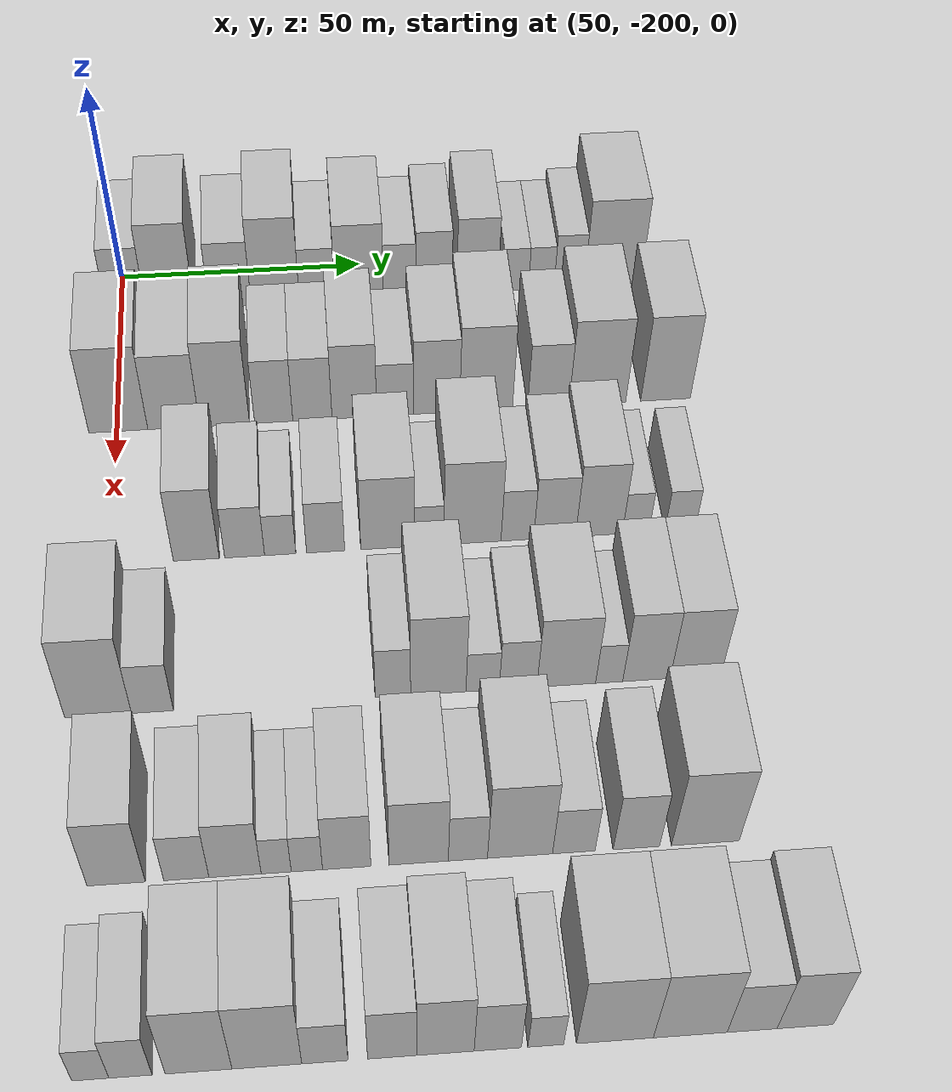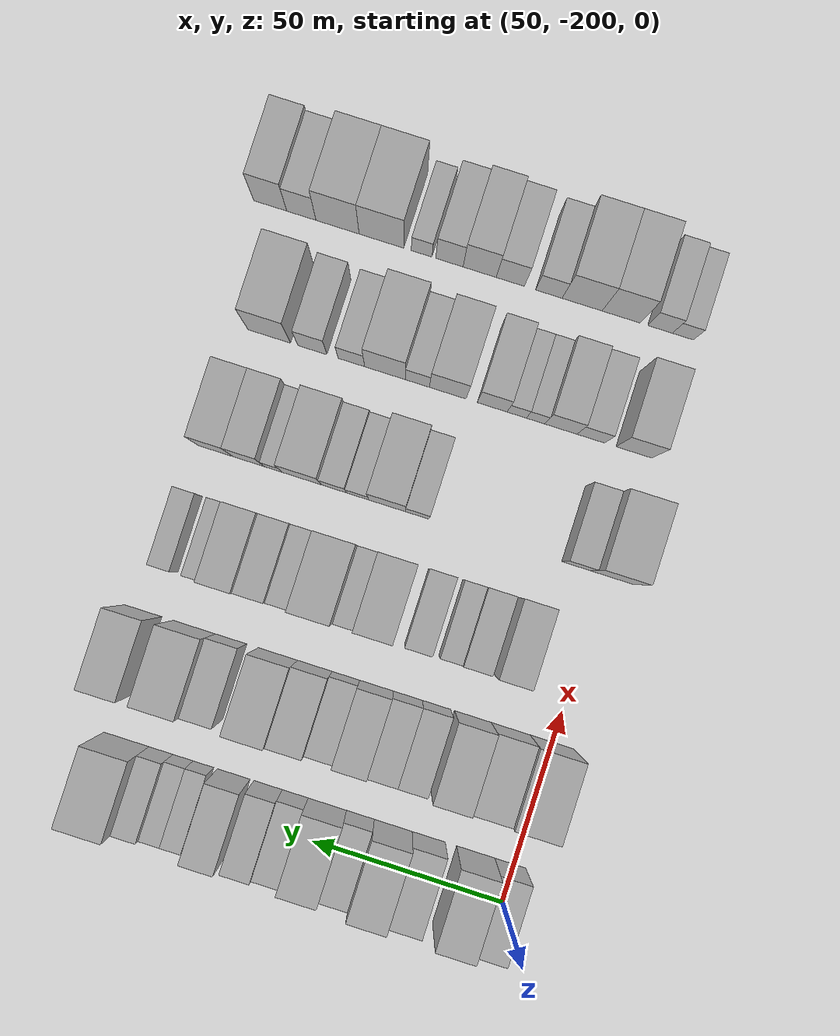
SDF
<sdf version="1.6">
 <world name="default">
  <model name="building_33">
   <static>1</static>
   <pose>50.0000 -198.8724 0 0.000000 0.000000 0.000000</pose>
   <link name="link">
    <pose>0 0 9.00 0 0 0</pose>
    <collision name="collision"><geometry><box><size>20.0000 8.0824 18.0000</size></box></geometry></collision>
    <visual name="visual">
     <cast_shadows>0</cast_shadows>
     <geometry><box><size>20.0000 8.0824 18.0000</size></box></geometry>
     <material>
      <script>
       <uri>model://HANNAS_wall/materials/scripts</uri>
       <uri>model://HANNAS_wall/materials/textures</uri>
       <name>vrc/HANNAS_wall</name>
      </script>
     </material>
    </visual>
   </link>
  </model>
  <model name="building_34">
   <static>1</static>
   <pose>50.0000 -189.7998 0 0.000000 0.000000 0.000000</pose>
   <link name="link">
    <pose>0 0 12.00 0 0 0</pose>
    <collision name="collision"><geometry><box><size>20.0000 10.0628 24.0000</size></box></geometry></collision>
    <visual name="visual">
     <cast_shadows>0</cast_shadows>
     <geometry><box><size>20.0000 10.0628 24.0000</size></box></geometry>
     <material>
      <script>
       <uri>model://HANNAS_wall/materials/scripts</uri>
       <uri>model://HANNAS_wall/materials/textures</uri>
       <name>vrc/HANNAS_wall</name>
      </script>
     </material>
    </visual>
   </link>
  </model>
  <model name="building_35">
   <static>1</static>
   <pose>50.0000 -177.4073 0 0.000000 0.000000 0.000000</pose>
   <link name="link">
    <pose>0 0 9.00 0 0 0</pose>
    <collision name="collision"><geometry><box><size>20.0000 8.7223 18.0000</size></box></geometry></collision>
    <visual name="visual">
     <cast_shadows>0</cast_shadows>
     <geometry><box><size>20.0000 8.7223 18.0000</size></box></geometry>
     <material>
      <script>
       <uri>model://HANNAS_wall/materials/scripts</uri>
       <uri>model://HANNAS_wall/materials/textures</uri>
       <name>vrc/HANNAS_wall</name>
      </script>
     </material>
    </visual>
   </link>
  </model>
  <model name="building_36">
   <static>1</static>
   <pose>50.0000 -168.0605 0 0.000000 0.000000 0.000000</pose>
   <link name="link">
    <pose>0 0 12.00 0 0 0</pose>
    <collision name="collision"><geometry><box><size>20.0000 9.9712 24.0000</size></box></geometry></collision>
    <visual name="visual">
     <cast_shadows>0</cast_shadows>
     <geometry><box><size>20.0000 9.9712 24.0000</size></box></geometry>
     <material>
      <script>
       <uri>model://HANNAS_wall/materials/scripts</uri>
       <uri>model://HANNAS_wall/materials/textures</uri>
       <name>vrc/HANNAS_wall</name>
      </script>
     </material>
    </visual>
   </link>
  </model>
  <model name="building_37">
   <static>1</static>
   <pose>50.0000 -159.4126 0 0.000000 0.000000 0.000000</pose>
   <link name="link">
    <pose>0 0 7.50 0 0 0</pose>
    <collision name="collision"><geometry><box><size>20.0000 7.3247 15.0000</size></box></geometry></collision>
    <visual name="visual">
     <cast_shadows>0</cast_shadows>
     <geometry><box><size>20.0000 7.3247 15.0000</size></box></geometry>
     <material>
      <script>
       <uri>model://HANNAS_wall/materials/scripts</uri>
       <uri>model://HANNAS_wall/materials/textures</uri>
       <name>vrc/HANNAS_wall</name>
      </script>
     </material>
    </visual>
   </link>
  </model>
  <model name="building_38">
   <static>1</static>
   <pose>50.0000 -150.7110 0 0.000000 0.000000 0.000000</pose>
   <link name="link">
    <pose>0 0 10.50 0 0 0</pose>
    <collision name="collision"><geometry><box><size>20.0000 10.0785 21.0000</size></box></geometry></collision>
    <visual name="visual">
     <cast_shadows>0</cast_shadows>
     <geometry><box><size>20.0000 10.0785 21.0000</size></box></geometry>
     <material>
      <script>
       <uri>model://HANNAS_wall/materials/scripts</uri>
       <uri>model://HANNAS_wall/materials/textures</uri>
       <name>vrc/HANNAS_wall</name>
      </script>
     </material>
    </visual>
   </link>
  </model>
  <model name="building_39">
   <static>1</static>
   <pose>50.0000 -142.2793 0 0.000000 0.000000 0.000000</pose>
   <link name="link">
    <pose>0 0 7.50 0 0 0</pose>
    <collision name="collision"><geometry><box><size>20.0000 6.7848 15.0000</size></box></geometry></collision>
    <visual name="visual">
     <cast_shadows>0</cast_shadows>
     <geometry><box><size>20.0000 6.7848 15.0000</size></box></geometry>
     <material>
      <script>
       <uri>model://HANNAS_wall/materials/scripts</uri>
       <uri>model://HANNAS_wall/materials/textures</uri>
       <name>vrc/HANNAS_wall</name>
      </script>
     </material>
    </visual>
   </link>
  </model>
  <model name="building_40">
   <static>1</static>
   <pose>50.0000 -135.1246 0 0.000000 0.000000 0.000000</pose>
   <link name="link">
    <pose>0 0 9.00 0 0 0</pose>
    <collision name="collision"><geometry><box><size>20.0000 7.5245 18.0000</size></box></geometry></collision>
    <visual name="visual">
     <cast_shadows>0</cast_shadows>
     <geometry><box><size>20.0000 7.5245 18.0000</size></box></geometry>
     <material>
      <script>
       <uri>model://HANNAS_wall/materials/scripts</uri>
       <uri>model://HANNAS_wall/materials/textures</uri>
       <name>vrc/HANNAS_wall</name>
      </script>
     </material>
    </visual>
   </link>
  </model>
  <model name="building_41">
   <static>1</static>
   <pose>50.0000 -126.0490 0 0.000000 0.000000 0.000000</pose>
   <link name="link">
    <pose>0 0 10.50 0 0 0</pose>
    <collision name="collision"><geometry><box><size>20.0000 8.6266 21.0000</size></box></geometry></collision>
    <visual name="visual">
     <cast_shadows>0</cast_shadows>
     <geometry><box><size>20.0000 8.6266 21.0000</size></box></geometry>
     <material>
      <script>
       <uri>model://HANNAS_wall/materials/scripts</uri>
       <uri>model://HANNAS_wall/materials/textures</uri>
       <name>vrc/HANNAS_wall</name>
      </script>
     </material>
    </visual>
   </link>
  </model>
  <model name="building_42">
   <static>1</static>
   <pose>50.0000 -118.0277 0 0.000000 0.000000 0.000000</pose>
   <link name="link">
    <pose>0 0 6.00 0 0 0</pose>
    <collision name="collision"><geometry><box><size>20.0000 5.4161 12.0000</size></box></geometry></collision>
    <visual name="visual">
     <cast_shadows>0</cast_shadows>
     <geometry><box><size>20.0000 5.4161 12.0000</size></box></geometry>
     <material>
      <script>
       <uri>model://HANNAS_wall/materials/scripts</uri>
       <uri>model://HANNAS_wall/materials/textures</uri>
       <name>vrc/HANNAS_wall</name>
      </script>
     </material>
    </visual>
   </link>
  </model>
  <model name="building_43">
   <static>1</static>
   <pose>50.0000 -112.6382 0 0.000000 0.000000 0.000000</pose>
   <link name="link">
    <pose>0 0 6.00 0 0 0</pose>
    <collision name="collision"><geometry><box><size>20.0000 5.3629 12.0000</size></box></geometry></collision>
    <visual name="visual">
     <cast_shadows>0</cast_shadows>
     <geometry><box><size>20.0000 5.3629 12.0000</size></box></geometry>
     <material>
      <script>
       <uri>model://HANNAS_wall/materials/scripts</uri>
       <uri>model://HANNAS_wall/materials/textures</uri>
       <name>vrc/HANNAS_wall</name>
      </script>
     </material>
    </visual>
   </link>
  </model>
  <model name="building_44">
   <static>1</static>
   <pose>50.0000 -106.8026 0 0.000000 0.000000 0.000000</pose>
   <link name="link">
    <pose>0 0 7.50 0 0 0</pose>
    <collision name="collision"><geometry><box><size>20.0000 6.3084 15.0000</size></box></geometry></collision>
    <visual name="visual">
     <cast_shadows>0</cast_shadows>
     <geometry><box><size>20.0000 6.3084 15.0000</size></box></geometry>
     <material>
      <script>
       <uri>model://HANNAS_wall/materials/scripts</uri>
       <uri>model://HANNAS_wall/materials/textures</uri>
       <name>vrc/HANNAS_wall</name>
      </script>
     </material>
    </visual>
   </link>
  </model>
  <model name="building_45">
   <static>1</static>
   <pose>50.0000 -97.6664 0 0.000000 0.000000 0.000000</pose>
   <link name="link">
    <pose>0 0 12.00 0 0 0</pose>
    <collision name="collision"><geometry><box><size>20.0000 11.9639 24.0000</size></box></geometry></collision>
    <visual name="visual">
     <cast_shadows>0</cast_shadows>
     <geometry><box><size>20.0000 11.9639 24.0000</size></box></geometry>
     <material>
      <script>
       <uri>model://HANNAS_wall/materials/scripts</uri>
       <uri>model://HANNAS_wall/materials/textures</uri>
       <name>vrc/HANNAS_wall</name>
      </script>
     </material>
    </visual>
   </link>
  </model>
  <model name="building_148">
   <static>1</static>
   <pose>82.0000 -199.6800 0 0.000000 0.000000 0.000000</pose>
   <link name="link">
    <pose>0 0 12.00 0 0 0</pose>
    <collision name="collision"><geometry><box><size>20.0000 11.4970 24.0000</size></box></geometry></collision>
    <visual name="visual">
     <cast_shadows>0</cast_shadows>
     <geometry><box><size>20.0000 11.4970 24.0000</size></box></geometry>
     <material>
      <script>
       <uri>model://HANNAS_wall/materials/scripts</uri>
       <uri>model://HANNAS_wall/materials/textures</uri>
       <name>vrc/HANNAS_wall</name>
      </script>
     </material>
    </visual>
   </link>
  </model>
  <model name="building_149">
   <static>1</static>
   <pose>82.0000 -188.8381 0 0.000000 0.000000 0.000000</pose>
   <link name="link">
    <pose>0 0 10.50 0 0 0</pose>
    <collision name="collision"><geometry><box><size>20.0000 10.1867 21.0000</size></box></geometry></collision>
    <visual name="visual">
     <cast_shadows>0</cast_shadows>
     <geometry><box><size>20.0000 10.1867 21.0000</size></box></geometry>
     <material>
      <script>
       <uri>model://HANNAS_wall/materials/scripts</uri>
       <uri>model://HANNAS_wall/materials/textures</uri>
       <name>vrc/HANNAS_wall</name>
      </script>
     </material>
    </visual>
   </link>
  </model>
  <model name="building_150">
   <static>1</static>
   <pose>82.0000 -178.8838 0 0.000000 0.000000 0.000000</pose>
   <link name="link">
    <pose>0 0 12.00 0 0 0</pose>
    <collision name="collision"><geometry><box><size>20.0000 9.7220 24.0000</size></box></geometry></collision>
    <visual name="visual">
     <cast_shadows>0</cast_shadows>
     <geometry><box><size>20.0000 9.7220 24.0000</size></box></geometry>
     <material>
      <script>
       <uri>model://HANNAS_wall/materials/scripts</uri>
       <uri>model://HANNAS_wall/materials/textures</uri>
       <name>vrc/HANNAS_wall</name>
      </script>
     </material>
    </visual>
   </link>
  </model>
  <model name="building_151">
   <static>1</static>
   <pose>82.0000 -169.2743 0 0.000000 0.000000 0.000000</pose>
   <link name="link">
    <pose>0 0 9.00 0 0 0</pose>
    <collision name="collision"><geometry><box><size>20.0000 7.4970 18.0000</size></box></geometry></collision>
    <visual name="visual">
     <cast_shadows>0</cast_shadows>
     <geometry><box><size>20.0000 7.4970 18.0000</size></box></geometry>
     <material>
      <script>
       <uri>model://HANNAS_wall/materials/scripts</uri>
       <uri>model://HANNAS_wall/materials/textures</uri>
       <name>vrc/HANNAS_wall</name>
      </script>
     </material>
    </visual>
   </link>
  </model>
  <model name="building_152">
   <static>1</static>
   <pose>82.0000 -161.6714 0 0.000000 0.000000 0.000000</pose>
   <link name="link">
    <pose>0 0 9.00 0 0 0</pose>
    <collision name="collision"><geometry><box><size>20.0000 7.7087 18.0000</size></box></geometry></collision>
    <visual name="visual">
     <cast_shadows>0</cast_shadows>
     <geometry><box><size>20.0000 7.7087 18.0000</size></box></geometry>
     <material>
      <script>
       <uri>model://HANNAS_wall/materials/scripts</uri>
       <uri>model://HANNAS_wall/materials/textures</uri>
       <name>vrc/HANNAS_wall</name>
      </script>
     </material>
    </visual>
   </link>
  </model>
  <model name="building_153">
   <static>1</static>
   <pose>82.0000 -153.4176 0 0.000000 0.000000 0.000000</pose>
   <link name="link">
    <pose>0 0 10.50 0 0 0</pose>
    <collision name="collision"><geometry><box><size>20.0000 8.7990 21.0000</size></box></geometry></collision>
    <visual name="visual">
     <cast_shadows>0</cast_shadows>
     <geometry><box><size>20.0000 8.7990 21.0000</size></box></geometry>
     <material>
      <script>
       <uri>model://HANNAS_wall/materials/scripts</uri>
       <uri>model://HANNAS_wall/materials/textures</uri>
       <name>vrc/HANNAS_wall</name>
      </script>
     </material>
    </visual>
   </link>
  </model>
  <model name="building_154">
   <static>1</static>
   <pose>82.0000 -145.4018 0 0.000000 0.000000 0.000000</pose>
   <link name="link">
    <pose>0 0 7.50 0 0 0</pose>
    <collision name="collision"><geometry><box><size>20.0000 7.2327 15.0000</size></box></geometry></collision>
    <visual name="visual">
     <cast_shadows>0</cast_shadows>
     <geometry><box><size>20.0000 7.2327 15.0000</size></box></geometry>
     <material>
      <script>
       <uri>model://HANNAS_wall/materials/scripts</uri>
       <uri>model://HANNAS_wall/materials/textures</uri>
       <name>vrc/HANNAS_wall</name>
      </script>
     </material>
    </visual>
   </link>
  </model>
  <model name="building_155">
   <static>1</static>
   <pose>82.0000 -137.2083 0 0.000000 0.000000 0.000000</pose>
   <link name="link">
    <pose>0 0 10.50 0 0 0</pose>
    <collision name="collision"><geometry><box><size>20.0000 9.1541 21.0000</size></box></geometry></collision>
    <visual name="visual">
     <cast_shadows>0</cast_shadows>
     <geometry><box><size>20.0000 9.1541 21.0000</size></box></geometry>
     <material>
      <script>
       <uri>model://HANNAS_wall/materials/scripts</uri>
       <uri>model://HANNAS_wall/materials/textures</uri>
       <name>vrc/HANNAS_wall</name>
      </script>
     </material>
    </visual>
   </link>
  </model>
  <model name="building_156">
   <static>1</static>
   <pose>82.0000 -127.3791 0 0.000000 0.000000 0.000000</pose>
   <link name="link">
    <pose>0 0 12.00 0 0 0</pose>
    <collision name="collision"><geometry><box><size>20.0000 10.5044 24.0000</size></box></geometry></collision>
    <visual name="visual">
     <cast_shadows>0</cast_shadows>
     <geometry><box><size>20.0000 10.5044 24.0000</size></box></geometry>
     <material>
      <script>
       <uri>model://HANNAS_wall/materials/scripts</uri>
       <uri>model://HANNAS_wall/materials/textures</uri>
       <name>vrc/HANNAS_wall</name>
      </script>
     </material>
    </visual>
   </link>
  </model>
  <model name="building_157">
   <static>1</static>
   <pose>82.0000 -115.0075 0 0.000000 0.000000 0.000000</pose>
   <link name="link">
    <pose>0 0 9.00 0 0 0</pose>
    <collision name="collision"><geometry><box><size>20.0000 8.2388 18.0000</size></box></geometry></collision>
    <visual name="visual">
     <cast_shadows>0</cast_shadows>
     <geometry><box><size>20.0000 8.2388 18.0000</size></box></geometry>
     <material>
      <script>
       <uri>model://HANNAS_wall/materials/scripts</uri>
       <uri>model://HANNAS_wall/materials/textures</uri>
       <name>vrc/HANNAS_wall</name>
      </script>
     </material>
    </visual>
   </link>
  </model>
  <model name="building_158">
   <static>1</static>
   <pose>82.0000 -105.2228 0 0.000000 0.000000 0.000000</pose>
   <link name="link">
    <pose>0 0 12.00 0 0 0</pose>
    <collision name="collision"><geometry><box><size>20.0000 11.3306 24.0000</size></box></geometry></collision>
    <visual name="visual">
     <cast_shadows>0</cast_shadows>
     <geometry><box><size>20.0000 11.3306 24.0000</size></box></geometry>
     <material>
      <script>
       <uri>model://HANNAS_wall/materials/scripts</uri>
       <uri>model://HANNAS_wall/materials/textures</uri>
       <name>vrc/HANNAS_wall</name>
      </script>
     </material>
    </visual>
   </link>
  </model>
  <model name="building_159">
   <static>1</static>
   <pose>82.0000 -91.5928 0 0.000000 0.000000 0.000000</pose>
   <link name="link">
    <pose>0 0 12.00 0 0 0</pose>
    <collision name="collision"><geometry><box><size>20.0000 9.9295 24.0000</size></box></geometry></collision>
    <visual name="visual">
     <cast_shadows>0</cast_shadows>
     <geometry><box><size>20.0000 9.9295 24.0000</size></box></geometry>
     <material>
      <script>
       <uri>model://HANNAS_wall/materials/scripts</uri>
       <uri>model://HANNAS_wall/materials/textures</uri>
       <name>vrc/HANNAS_wall</name>
      </script>
     </material>
    </visual>
   </link>
  </model>
  <model name="building_274">
   <static>1</static>
   <pose>114.0000 -184.4923 0 0.000000 0.000000 0.000000</pose>
   <link name="link">
    <pose>0 0 10.50 0 0 0</pose>
    <collision name="collision"><geometry><box><size>20.0000 8.4904 21.0000</size></box></geometry></collision>
    <visual name="visual">
     <cast_shadows>0</cast_shadows>
     <geometry><box><size>20.0000 8.4904 21.0000</size></box></geometry>
     <material>
      <script>
       <uri>model://HANNAS_wall/materials/scripts</uri>
       <uri>model://HANNAS_wall/materials/textures</uri>
       <name>vrc/HANNAS_wall</name>
      </script>
     </material>
    </visual>
   </link>
  </model>
  <model name="building_275">
   <static>1</static>
   <pose>114.0000 -175.5477 0 0.000000 0.000000 0.000000</pose>
   <link name="link">
    <pose>0 0 7.50 0 0 0</pose>
    <collision name="collision"><geometry><box><size>20.0000 7.3988 15.0000</size></box></geometry></collision>
    <visual name="visual">
     <cast_shadows>0</cast_shadows>
     <geometry><box><size>20.0000 7.3988 15.0000</size></box></geometry>
     <material>
      <script>
       <uri>model://HANNAS_wall/materials/scripts</uri>
       <uri>model://HANNAS_wall/materials/textures</uri>
       <name>vrc/HANNAS_wall</name>
      </script>
     </material>
    </visual>
   </link>
  </model>
  <model name="building_276">
   <static>1</static>
   <pose>114.0000 -168.9505 0 0.000000 0.000000 0.000000</pose>
   <link name="link">
    <pose>0 0 6.00 0 0 0</pose>
    <collision name="collision"><geometry><box><size>20.0000 5.7957 12.0000</size></box></geometry></collision>
    <visual name="visual">
     <cast_shadows>0</cast_shadows>
     <geometry><box><size>20.0000 5.7957 12.0000</size></box></geometry>
     <material>
      <script>
       <uri>model://HANNAS_wall/materials/scripts</uri>
       <uri>model://HANNAS_wall/materials/textures</uri>
       <name>vrc/HANNAS_wall</name>
      </script>
     </material>
    </visual>
   </link>
  </model>
  <model name="building_277">
   <static>1</static>
   <pose>114.0000 -160.5109 0 0.000000 0.000000 0.000000</pose>
   <link name="link">
    <pose>0 0 7.50 0 0 0</pose>
    <collision name="collision"><geometry><box><size>20.0000 7.0835 15.0000</size></box></geometry></collision>
    <visual name="visual">
     <cast_shadows>0</cast_shadows>
     <geometry><box><size>20.0000 7.0835 15.0000</size></box></geometry>
     <material>
      <script>
       <uri>model://HANNAS_wall/materials/scripts</uri>
       <uri>model://HANNAS_wall/materials/textures</uri>
       <name>vrc/HANNAS_wall</name>
      </script>
     </material>
    </visual>
   </link>
  </model>
  <model name="building_278">
   <static>1</static>
   <pose>114.0000 -148.9523 0 0.000000 0.000000 0.000000</pose>
   <link name="link">
    <pose>0 0 10.50 0 0 0</pose>
    <collision name="collision"><geometry><box><size>20.0000 10.0337 21.0000</size></box></geometry></collision>
    <visual name="visual">
     <cast_shadows>0</cast_shadows>
     <geometry><box><size>20.0000 10.0337 21.0000</size></box></geometry>
     <material>
      <script>
       <uri>model://HANNAS_wall/materials/scripts</uri>
       <uri>model://HANNAS_wall/materials/textures</uri>
       <name>vrc/HANNAS_wall</name>
      </script>
     </material>
    </visual>
   </link>
  </model>
  <model name="building_279">
   <static>1</static>
   <pose>114.0000 -141.2388 0 0.000000 0.000000 0.000000</pose>
   <link name="link">
    <pose>0 0 6.00 0 0 0</pose>
    <collision name="collision"><geometry><box><size>20.0000 5.3932 12.0000</size></box></geometry></collision>
    <visual name="visual">
     <cast_shadows>0</cast_shadows>
     <geometry><box><size>20.0000 5.3932 12.0000</size></box></geometry>
     <material>
      <script>
       <uri>model://HANNAS_wall/materials/scripts</uri>
       <uri>model://HANNAS_wall/materials/textures</uri>
       <name>vrc/HANNAS_wall</name>
      </script>
     </material>
    </visual>
   </link>
  </model>
  <model name="building_280">
   <static>1</static>
   <pose>114.0000 -133.1542 0 0.000000 0.000000 0.000000</pose>
   <link name="link">
    <pose>0 0 12.00 0 0 0</pose>
    <collision name="collision"><geometry><box><size>20.0000 10.7761 24.0000</size></box></geometry></collision>
    <visual name="visual">
     <cast_shadows>0</cast_shadows>
     <geometry><box><size>20.0000 10.7761 24.0000</size></box></geometry>
     <material>
      <script>
       <uri>model://HANNAS_wall/materials/scripts</uri>
       <uri>model://HANNAS_wall/materials/textures</uri>
       <name>vrc/HANNAS_wall</name>
      </script>
     </material>
    </visual>
   </link>
  </model>
  <model name="building_281">
   <static>1</static>
   <pose>114.0000 -124.6949 0 0.000000 0.000000 0.000000</pose>
   <link name="link">
    <pose>0 0 7.50 0 0 0</pose>
    <collision name="collision"><geometry><box><size>20.0000 6.1426 15.0000</size></box></geometry></collision>
    <visual name="visual">
     <cast_shadows>0</cast_shadows>
     <geometry><box><size>20.0000 6.1426 15.0000</size></box></geometry>
     <material>
      <script>
       <uri>model://HANNAS_wall/materials/scripts</uri>
       <uri>model://HANNAS_wall/materials/textures</uri>
       <name>vrc/HANNAS_wall</name>
      </script>
     </material>
    </visual>
   </link>
  </model>
  <model name="building_282">
   <static>1</static>
   <pose>114.0000 -117.6831 0 0.000000 0.000000 0.000000</pose>
   <link name="link">
    <pose>0 0 9.00 0 0 0</pose>
    <collision name="collision"><geometry><box><size>20.0000 7.8811 18.0000</size></box></geometry></collision>
    <visual name="visual">
     <cast_shadows>0</cast_shadows>
     <geometry><box><size>20.0000 7.8811 18.0000</size></box></geometry>
     <material>
      <script>
       <uri>model://HANNAS_wall/materials/scripts</uri>
       <uri>model://HANNAS_wall/materials/textures</uri>
       <name>vrc/HANNAS_wall</name>
      </script>
     </material>
    </visual>
   </link>
  </model>
  <model name="building_283">
   <static>1</static>
   <pose>114.0000 -109.3306 0 0.000000 0.000000 0.000000</pose>
   <link name="link">
    <pose>0 0 10.50 0 0 0</pose>
    <collision name="collision"><geometry><box><size>20.0000 8.8238 21.0000</size></box></geometry></collision>
    <visual name="visual">
     <cast_shadows>0</cast_shadows>
     <geometry><box><size>20.0000 8.8238 21.0000</size></box></geometry>
     <material>
      <script>
       <uri>model://HANNAS_wall/materials/scripts</uri>
       <uri>model://HANNAS_wall/materials/textures</uri>
       <name>vrc/HANNAS_wall</name>
      </script>
     </material>
    </visual>
   </link>
  </model>
  <model name="building_284">
   <static>1</static>
   <pose>114.0000 -102.4011 0 0.000000 0.000000 0.000000</pose>
   <link name="link">
    <pose>0 0 6.00 0 0 0</pose>
    <collision name="collision"><geometry><box><size>20.0000 5.0351 12.0000</size></box></geometry></collision>
    <visual name="visual">
     <cast_shadows>0</cast_shadows>
     <geometry><box><size>20.0000 5.0351 12.0000</size></box></geometry>
     <material>
      <script>
       <uri>model://HANNAS_wall/materials/scripts</uri>
       <uri>model://HANNAS_wall/materials/textures</uri>
       <name>vrc/HANNAS_wall</name>
      </script>
     </material>
    </visual>
   </link>
  </model>
  <model name="building_285">
   <static>1</static>
   <pose>114.0000 -94.0062 0 0.000000 0.000000 0.000000</pose>
   <link name="link">
    <pose>0 0 6.00 0 0 0</pose>
    <collision name="collision"><geometry><box><size>20.0000 5.7548 12.0000</size></box></geometry></collision>
    <visual name="visual">
     <cast_shadows>0</cast_shadows>
     <geometry><box><size>20.0000 5.7548 12.0000</size></box></geometry>
     <material>
      <script>
       <uri>model://HANNAS_wall/materials/scripts</uri>
       <uri>model://HANNAS_wall/materials/textures</uri>
       <name>vrc/HANNAS_wall</name>
      </script>
     </material>
    </visual>
   </link>
  </model>
  <model name="building_389">
   <static>1</static>
   <pose>146.0000 -201.5791 0 0.000000 0.000000 0.000000</pose>
   <link name="link">
    <pose>0 0 12.00 0 0 0</pose>
    <collision name="collision"><geometry><box><size>20.0000 11.5612 24.0000</size></box></geometry></collision>
    <visual name="visual">
     <cast_shadows>0</cast_shadows>
     <geometry><box><size>20.0000 11.5612 24.0000</size></box></geometry>
     <material>
      <script>
       <uri>model://HANNAS_wall/materials/scripts</uri>
       <uri>model://HANNAS_wall/materials/textures</uri>
       <name>vrc/HANNAS_wall</name>
      </script>
     </material>
    </visual>
   </link>
  </model>
  <model name="building_390">
   <static>1</static>
   <pose>146.0000 -192.1432 0 0.000000 0.000000 0.000000</pose>
   <link name="link">
    <pose>0 0 7.50 0 0 0</pose>
    <collision name="collision"><geometry><box><size>20.0000 7.3105 15.0000</size></box></geometry></collision>
    <visual name="visual">
     <cast_shadows>0</cast_shadows>
     <geometry><box><size>20.0000 7.3105 15.0000</size></box></geometry>
     <material>
      <script>
       <uri>model://HANNAS_wall/materials/scripts</uri>
       <uri>model://HANNAS_wall/materials/textures</uri>
       <name>vrc/HANNAS_wall</name>
      </script>
     </material>
    </visual>
   </link>
  </model>
  <model name="building_391">
   <static>1</static>
   <pose>146.0000 -150.1590 0 0.000000 0.000000 0.000000</pose>
   <link name="link">
    <pose>0 0 7.50 0 0 0</pose>
    <collision name="collision"><geometry><box><size>20.0000 6.2193 15.0000</size></box></geometry></collision>
    <visual name="visual">
     <cast_shadows>0</cast_shadows>
     <geometry><box><size>20.0000 6.2193 15.0000</size></box></geometry>
     <material>
      <script>
       <uri>model://HANNAS_wall/materials/scripts</uri>
       <uri>model://HANNAS_wall/materials/textures</uri>
       <name>vrc/HANNAS_wall</name>
      </script>
     </material>
    </visual>
   </link>
  </model>
  <model name="building_392">
   <static>1</static>
   <pose>146.0000 -142.1741 0 0.000000 0.000000 0.000000</pose>
   <link name="link">
    <pose>0 0 12.00 0 0 0</pose>
    <collision name="collision"><geometry><box><size>20.0000 9.7504 24.0000</size></box></geometry></collision>
    <visual name="visual">
     <cast_shadows>0</cast_shadows>
     <geometry><box><size>20.0000 9.7504 24.0000</size></box></geometry>
     <material>
      <script>
       <uri>model://HANNAS_wall/materials/scripts</uri>
       <uri>model://HANNAS_wall/materials/textures</uri>
       <name>vrc/HANNAS_wall</name>
      </script>
     </material>
    </visual>
   </link>
  </model>
  <model name="building_393">
   <static>1</static>
   <pose>146.0000 -134.3631 0 0.000000 0.000000 0.000000</pose>
   <link name="link">
    <pose>0 0 6.00 0 0 0</pose>
    <collision name="collision"><geometry><box><size>20.0000 5.8716 12.0000</size></box></geometry></collision>
    <visual name="visual">
     <cast_shadows>0</cast_shadows>
     <geometry><box><size>20.0000 5.8716 12.0000</size></box></geometry>
     <material>
      <script>
       <uri>model://HANNAS_wall/materials/scripts</uri>
       <uri>model://HANNAS_wall/materials/textures</uri>
       <name>vrc/HANNAS_wall</name>
      </script>
     </material>
    </visual>
   </link>
  </model>
  <model name="building_394">
   <static>1</static>
   <pose>146.0000 -128.0983 0 0.000000 0.000000 0.000000</pose>
   <link name="link">
    <pose>0 0 7.50 0 0 0</pose>
    <collision name="collision"><geometry><box><size>20.0000 6.6581 15.0000</size></box></geometry></collision>
    <visual name="visual">
     <cast_shadows>0</cast_shadows>
     <geometry><box><size>20.0000 6.6581 15.0000</size></box></geometry>
     <material>
      <script>
       <uri>model://HANNAS_wall/materials/scripts</uri>
       <uri>model://HANNAS_wall/materials/textures</uri>
       <name>vrc/HANNAS_wall</name>
      </script>
     </material>
    </visual>
   </link>
  </model>
  <model name="building_395">
   <static>1</static>
   <pose>146.0000 -119.5614 0 0.000000 0.000000 0.000000</pose>
   <link name="link">
    <pose>0 0 10.50 0 0 0</pose>
    <collision name="collision"><geometry><box><size>20.0000 10.4157 21.0000</size></box></geometry></collision>
    <visual name="visual">
     <cast_shadows>0</cast_shadows>
     <geometry><box><size>20.0000 10.4157 21.0000</size></box></geometry>
     <material>
      <script>
       <uri>model://HANNAS_wall/materials/scripts</uri>
       <uri>model://HANNAS_wall/materials/textures</uri>
       <name>vrc/HANNAS_wall</name>
      </script>
     </material>
    </visual>
   </link>
  </model>
  <model name="building_396">
   <static>1</static>
   <pose>146.0000 -111.9463 0 0.000000 0.000000 0.000000</pose>
   <link name="link">
    <pose>0 0 6.00 0 0 0</pose>
    <collision name="collision"><geometry><box><size>20.0000 4.8146 12.0000</size></box></geometry></collision>
    <visual name="visual">
     <cast_shadows>0</cast_shadows>
     <geometry><box><size>20.0000 4.8146 12.0000</size></box></geometry>
     <material>
      <script>
       <uri>model://HANNAS_wall/materials/scripts</uri>
       <uri>model://HANNAS_wall/materials/textures</uri>
       <name>vrc/HANNAS_wall</name>
      </script>
     </material>
    </visual>
   </link>
  </model>
  <model name="building_397">
   <static>1</static>
   <pose>146.0000 -105.3307 0 0.000000 0.000000 0.000000</pose>
   <link name="link">
    <pose>0 0 10.50 0 0 0</pose>
    <collision name="collision"><geometry><box><size>20.0000 8.4166 21.0000</size></box></geometry></collision>
    <visual name="visual">
     <cast_shadows>0</cast_shadows>
     <geometry><box><size>20.0000 8.4166 21.0000</size></box></geometry>
     <material>
      <script>
       <uri>model://HANNAS_wall/materials/scripts</uri>
       <uri>model://HANNAS_wall/materials/textures</uri>
       <name>vrc/HANNAS_wall</name>
      </script>
     </material>
    </visual>
   </link>
  </model>
  <model name="building_398">
   <static>1</static>
   <pose>146.0000 -96.5731 0 0.000000 0.000000 0.000000</pose>
   <link name="link">
    <pose>0 0 10.50 0 0 0</pose>
    <collision name="collision"><geometry><box><size>20.0000 9.0986 21.0000</size></box></geometry></collision>
    <visual name="visual">
     <cast_shadows>0</cast_shadows>
     <geometry><box><size>20.0000 9.0986 21.0000</size></box></geometry>
     <material>
      <script>
       <uri>model://HANNAS_wall/materials/scripts</uri>
       <uri>model://HANNAS_wall/materials/textures</uri>
       <name>vrc/HANNAS_wall</name>
      </script>
     </material>
    </visual>
   </link>
  </model>
  <model name="building_506">
   <static>1</static>
   <pose>178.0000 -197.6064 0 0.000000 0.000000 0.000000</pose>
   <link name="link">
    <pose>0 0 10.50 0 0 0</pose>
    <collision name="collision"><geometry><box><size>20.0000 9.4864 21.0000</size></box></geometry></collision>
    <visual name="visual">
     <cast_shadows>0</cast_shadows>
     <geometry><box><size>20.0000 9.4864 21.0000</size></box></geometry>
     <material>
      <script>
       <uri>model://HANNAS_wall/materials/scripts</uri>
       <uri>model://HANNAS_wall/materials/textures</uri>
       <name>vrc/HANNAS_wall</name>
      </script>
     </material>
    </visual>
   </link>
  </model>
  <model name="building_507">
   <static>1</static>
   <pose>178.0000 -186.1796 0 0.000000 0.000000 0.000000</pose>
   <link name="link">
    <pose>0 0 7.50 0 0 0</pose>
    <collision name="collision"><geometry><box><size>20.0000 7.3671 15.0000</size></box></geometry></collision>
    <visual name="visual">
     <cast_shadows>0</cast_shadows>
     <geometry><box><size>20.0000 7.3671 15.0000</size></box></geometry>
     <material>
      <script>
       <uri>model://HANNAS_wall/materials/scripts</uri>
       <uri>model://HANNAS_wall/materials/textures</uri>
       <name>vrc/HANNAS_wall</name>
      </script>
     </material>
    </visual>
   </link>
  </model>
  <model name="building_508">
   <static>1</static>
   <pose>178.0000 -178.2247 0 0.000000 0.000000 0.000000</pose>
   <link name="link">
    <pose>0 0 9.00 0 0 0</pose>
    <collision name="collision"><geometry><box><size>20.0000 8.5427 18.0000</size></box></geometry></collision>
    <visual name="visual">
     <cast_shadows>0</cast_shadows>
     <geometry><box><size>20.0000 8.5427 18.0000</size></box></geometry>
     <material>
      <script>
       <uri>model://HANNAS_wall/materials/scripts</uri>
       <uri>model://HANNAS_wall/materials/textures</uri>
       <name>vrc/HANNAS_wall</name>
      </script>
     </material>
    </visual>
   </link>
  </model>
  <model name="building_509">
   <static>1</static>
   <pose>178.0000 -171.4905 0 0.000000 0.000000 0.000000</pose>
   <link name="link">
    <pose>0 0 6.00 0 0 0</pose>
    <collision name="collision"><geometry><box><size>20.0000 4.9258 12.0000</size></box></geometry></collision>
    <visual name="visual">
     <cast_shadows>0</cast_shadows>
     <geometry><box><size>20.0000 4.9258 12.0000</size></box></geometry>
     <material>
      <script>
       <uri>model://HANNAS_wall/materials/scripts</uri>
       <uri>model://HANNAS_wall/materials/textures</uri>
       <name>vrc/HANNAS_wall</name>
      </script>
     </material>
    </visual>
   </link>
  </model>
  <model name="building_510">
   <static>1</static>
   <pose>178.0000 -166.4621 0 0.000000 0.000000 0.000000</pose>
   <link name="link">
    <pose>0 0 6.00 0 0 0</pose>
    <collision name="collision"><geometry><box><size>20.0000 5.1310 12.0000</size></box></geometry></collision>
    <visual name="visual">
     <cast_shadows>0</cast_shadows>
     <geometry><box><size>20.0000 5.1310 12.0000</size></box></geometry>
     <material>
      <script>
       <uri>model://HANNAS_wall/materials/scripts</uri>
       <uri>model://HANNAS_wall/materials/textures</uri>
       <name>vrc/HANNAS_wall</name>
      </script>
     </material>
    </visual>
   </link>
  </model>
  <model name="building_511">
   <static>1</static>
   <pose>178.0000 -159.9237 0 0.000000 0.000000 0.000000</pose>
   <link name="link">
    <pose>0 0 9.00 0 0 0</pose>
    <collision name="collision"><geometry><box><size>20.0000 7.9459 18.0000</size></box></geometry></collision>
    <visual name="visual">
     <cast_shadows>0</cast_shadows>
     <geometry><box><size>20.0000 7.9459 18.0000</size></box></geometry>
     <material>
      <script>
       <uri>model://HANNAS_wall/materials/scripts</uri>
       <uri>model://HANNAS_wall/materials/textures</uri>
       <name>vrc/HANNAS_wall</name>
      </script>
     </material>
    </visual>
   </link>
  </model>
  <model name="building_512">
   <static>1</static>
   <pose>178.0000 -148.0669 0 0.000000 0.000000 0.000000</pose>
   <link name="link">
    <pose>0 0 10.50 0 0 0</pose>
    <collision name="collision"><geometry><box><size>20.0000 9.7675 21.0000</size></box></geometry></collision>
    <visual name="visual">
     <cast_shadows>0</cast_shadows>
     <geometry><box><size>20.0000 9.7675 21.0000</size></box></geometry>
     <material>
      <script>
       <uri>model://HANNAS_wall/materials/scripts</uri>
       <uri>model://HANNAS_wall/materials/textures</uri>
       <name>vrc/HANNAS_wall</name>
      </script>
     </material>
    </visual>
   </link>
  </model>
  <model name="building_513">
   <static>1</static>
   <pose>178.0000 -139.9475 0 0.000000 0.000000 0.000000</pose>
   <link name="link">
    <pose>0 0 7.50 0 0 0</pose>
    <collision name="collision"><geometry><box><size>20.0000 6.4714 15.0000</size></box></geometry></collision>
    <visual name="visual">
     <cast_shadows>0</cast_shadows>
     <geometry><box><size>20.0000 6.4714 15.0000</size></box></geometry>
     <material>
      <script>
       <uri>model://HANNAS_wall/materials/scripts</uri>
       <uri>model://HANNAS_wall/materials/textures</uri>
       <name>vrc/HANNAS_wall</name>
      </script>
     </material>
    </visual>
   </link>
  </model>
  <model name="building_514">
   <static>1</static>
   <pose>178.0000 -131.3162 0 0.000000 0.000000 0.000000</pose>
   <link name="link">
    <pose>0 0 12.00 0 0 0</pose>
    <collision name="collision"><geometry><box><size>20.0000 10.7911 24.0000</size></box></geometry></collision>
    <visual name="visual">
     <cast_shadows>0</cast_shadows>
     <geometry><box><size>20.0000 10.7911 24.0000</size></box></geometry>
     <material>
      <script>
       <uri>model://HANNAS_wall/materials/scripts</uri>
       <uri>model://HANNAS_wall/materials/textures</uri>
       <name>vrc/HANNAS_wall</name>
      </script>
     </material>
    </visual>
   </link>
  </model>
  <model name="building_515">
   <static>1</static>
   <pose>178.0000 -122.3767 0 0.000000 0.000000 0.000000</pose>
   <link name="link">
    <pose>0 0 7.50 0 0 0</pose>
    <collision name="collision"><geometry><box><size>20.0000 7.0879 15.0000</size></box></geometry></collision>
    <visual name="visual">
     <cast_shadows>0</cast_shadows>
     <geometry><box><size>20.0000 7.0879 15.0000</size></box></geometry>
     <material>
      <script>
       <uri>model://HANNAS_wall/materials/scripts</uri>
       <uri>model://HANNAS_wall/materials/textures</uri>
       <name>vrc/HANNAS_wall</name>
      </script>
     </material>
    </visual>
   </link>
  </model>
  <model name="building_516">
   <static>1</static>
   <pose>178.0000 -111.9645 0 0.000000 0.000000 0.000000</pose>
   <link name="link">
    <pose>0 0 9.00 0 0 0</pose>
    <collision name="collision"><geometry><box><size>20.0000 7.7367 18.0000</size></box></geometry></collision>
    <visual name="visual">
     <cast_shadows>0</cast_shadows>
     <geometry><box><size>20.0000 7.7367 18.0000</size></box></geometry>
     <material>
      <script>
       <uri>model://HANNAS_wall/materials/scripts</uri>
       <uri>model://HANNAS_wall/materials/textures</uri>
       <name>vrc/HANNAS_wall</name>
      </script>
     </material>
    </visual>
   </link>
  </model>
  <model name="building_517">
   <static>1</static>
   <pose>178.0000 -100.4231 0 0.000000 0.000000 0.000000</pose>
   <link name="link">
    <pose>0 0 12.00 0 0 0</pose>
    <collision name="collision"><geometry><box><size>20.0000 11.3460 24.0000</size></box></geometry></collision>
    <visual name="visual">
     <cast_shadows>0</cast_shadows>
     <geometry><box><size>20.0000 11.3460 24.0000</size></box></geometry>
     <material>
      <script>
       <uri>model://HANNAS_wall/materials/scripts</uri>
       <uri>model://HANNAS_wall/materials/textures</uri>
       <name>vrc/HANNAS_wall</name>
      </script>
     </material>
    </visual>
   </link>
  </model>
  <model name="building_632">
   <static>1</static>
   <pose>210.0000 -200.7041 0 0.000000 0.000000 0.000000</pose>
   <link name="link">
    <pose>0 0 6.00 0 0 0</pose>
    <collision name="collision"><geometry><box><size>20.0000 5.6285 12.0000</size></box></geometry></collision>
    <visual name="visual">
     <cast_shadows>0</cast_shadows>
     <geometry><box><size>20.0000 5.6285 12.0000</size></box></geometry>
     <material>
      <script>
       <uri>model://HANNAS_wall/materials/scripts</uri>
       <uri>model://HANNAS_wall/materials/textures</uri>
       <name>vrc/HANNAS_wall</name>
      </script>
     </material>
    </visual>
   </link>
  </model>
  <model name="building_633">
   <static>1</static>
   <pose>210.0000 -194.6069 0 0.000000 0.000000 0.000000</pose>
   <link name="link">
    <pose>0 0 7.50 0 0 0</pose>
    <collision name="collision"><geometry><box><size>20.0000 6.5661 15.0000</size></box></geometry></collision>
    <visual name="visual">
     <cast_shadows>0</cast_shadows>
     <geometry><box><size>20.0000 6.5661 15.0000</size></box></geometry>
     <material>
      <script>
       <uri>model://HANNAS_wall/materials/scripts</uri>
       <uri>model://HANNAS_wall/materials/textures</uri>
       <name>vrc/HANNAS_wall</name>
      </script>
     </material>
    </visual>
   </link>
  </model>
  <model name="building_634">
   <static>1</static>
   <pose>210.0000 -184.2358 0 0.000000 0.000000 0.000000</pose>
   <link name="link">
    <pose>0 0 12.00 0 0 0</pose>
    <collision name="collision"><geometry><box><size>20.0000 10.1760 24.0000</size></box></geometry></collision>
    <visual name="visual">
     <cast_shadows>0</cast_shadows>
     <geometry><box><size>20.0000 10.1760 24.0000</size></box></geometry>
     <material>
      <script>
       <uri>model://HANNAS_wall/materials/scripts</uri>
       <uri>model://HANNAS_wall/materials/textures</uri>
       <name>vrc/HANNAS_wall</name>
      </script>
     </material>
    </visual>
   </link>
  </model>
  <model name="building_635">
   <static>1</static>
   <pose>210.0000 -173.8140 0 0.000000 0.000000 0.000000</pose>
   <link name="link">
    <pose>0 0 12.00 0 0 0</pose>
    <collision name="collision"><geometry><box><size>20.0000 10.6676 24.0000</size></box></geometry></collision>
    <visual name="visual">
     <cast_shadows>0</cast_shadows>
     <geometry><box><size>20.0000 10.6676 24.0000</size></box></geometry>
     <material>
      <script>
       <uri>model://HANNAS_wall/materials/scripts</uri>
       <uri>model://HANNAS_wall/materials/textures</uri>
       <name>vrc/HANNAS_wall</name>
      </script>
     </material>
    </visual>
   </link>
  </model>
  <model name="building_636">
   <static>1</static>
   <pose>210.0000 -164.9336 0 0.000000 0.000000 0.000000</pose>
   <link name="link">
    <pose>0 0 7.50 0 0 0</pose>
    <collision name="collision"><geometry><box><size>20.0000 7.0931 15.0000</size></box></geometry></collision>
    <visual name="visual">
     <cast_shadows>0</cast_shadows>
     <geometry><box><size>20.0000 7.0931 15.0000</size></box></geometry>
     <material>
      <script>
       <uri>model://HANNAS_wall/materials/scripts</uri>
       <uri>model://HANNAS_wall/materials/textures</uri>
       <name>vrc/HANNAS_wall</name>
      </script>
     </material>
    </visual>
   </link>
  </model>
  <model name="building_637">
   <static>1</static>
   <pose>210.0000 -154.6250 0 0.000000 0.000000 0.000000</pose>
   <link name="link">
    <pose>0 0 9.00 0 0 0</pose>
    <collision name="collision"><geometry><box><size>20.0000 7.5240 18.0000</size></box></geometry></collision>
    <visual name="visual">
     <cast_shadows>0</cast_shadows>
     <geometry><box><size>20.0000 7.5240 18.0000</size></box></geometry>
     <material>
      <script>
       <uri>model://HANNAS_wall/materials/scripts</uri>
       <uri>model://HANNAS_wall/materials/textures</uri>
       <name>vrc/HANNAS_wall</name>
      </script>
     </material>
    </visual>
   </link>
  </model>
  <model name="building_638">
   <static>1</static>
   <pose>210.0000 -146.4172 0 0.000000 0.000000 0.000000</pose>
   <link name="link">
    <pose>0 0 10.50 0 0 0</pose>
    <collision name="collision"><geometry><box><size>20.0000 8.8916 21.0000</size></box></geometry></collision>
    <visual name="visual">
     <cast_shadows>0</cast_shadows>
     <geometry><box><size>20.0000 8.8916 21.0000</size></box></geometry>
     <material>
      <script>
       <uri>model://HANNAS_wall/materials/scripts</uri>
       <uri>model://HANNAS_wall/materials/textures</uri>
       <name>vrc/HANNAS_wall</name>
      </script>
     </material>
    </visual>
   </link>
  </model>
  <model name="building_639">
   <static>1</static>
   <pose>210.0000 -138.3178 0 0.000000 0.000000 0.000000</pose>
   <link name="link">
    <pose>0 0 9.00 0 0 0</pose>
    <collision name="collision"><geometry><box><size>20.0000 7.3073 18.0000</size></box></geometry></collision>
    <visual name="visual">
     <cast_shadows>0</cast_shadows>
     <geometry><box><size>20.0000 7.3073 18.0000</size></box></geometry>
     <material>
      <script>
       <uri>model://HANNAS_wall/materials/scripts</uri>
       <uri>model://HANNAS_wall/materials/textures</uri>
       <name>vrc/HANNAS_wall</name>
      </script>
     </material>
    </visual>
   </link>
  </model>
  <model name="building_640">
   <static>1</static>
   <pose>210.0000 -130.8886 0 0.000000 0.000000 0.000000</pose>
   <link name="link">
    <pose>0 0 6.00 0 0 0</pose>
    <collision name="collision"><geometry><box><size>20.0000 5.5509 12.0000</size></box></geometry></collision>
    <visual name="visual">
     <cast_shadows>0</cast_shadows>
     <geometry><box><size>20.0000 5.5509 12.0000</size></box></geometry>
     <material>
      <script>
       <uri>model://HANNAS_wall/materials/scripts</uri>
       <uri>model://HANNAS_wall/materials/textures</uri>
       <name>vrc/HANNAS_wall</name>
      </script>
     </material>
    </visual>
   </link>
  </model>
  <model name="building_641">
   <static>1</static>
   <pose>210.0000 -120.1276 0 0.000000 0.000000 0.000000</pose>
   <link name="link">
    <pose>0 0 12.00 0 0 0</pose>
    <collision name="collision"><geometry><box><size>20.0000 11.9711 24.0000</size></box></geometry></collision>
    <visual name="visual">
     <cast_shadows>0</cast_shadows>
     <geometry><box><size>20.0000 11.9711 24.0000</size></box></geometry>
     <material>
      <script>
       <uri>model://HANNAS_wall/materials/scripts</uri>
       <uri>model://HANNAS_wall/materials/textures</uri>
       <name>vrc/HANNAS_wall</name>
      </script>
     </material>
    </visual>
   </link>
  </model>
  <model name="building_642">
   <static>1</static>
   <pose>210.0000 -108.3721 0 0.000000 0.000000 0.000000</pose>
   <link name="link">
    <pose>0 0 12.00 0 0 0</pose>
    <collision name="collision"><geometry><box><size>20.0000 11.5400 24.0000</size></box></geometry></collision>
    <visual name="visual">
     <cast_shadows>0</cast_shadows>
     <geometry><box><size>20.0000 11.5400 24.0000</size></box></geometry>
     <material>
      <script>
       <uri>model://HANNAS_wall/materials/scripts</uri>
       <uri>model://HANNAS_wall/materials/textures</uri>
       <name>vrc/HANNAS_wall</name>
      </script>
     </material>
    </visual>
   </link>
  </model>
  <model name="building_643">
   <static>1</static>
   <pose>210.0000 -98.6872 0 0.000000 0.000000 0.000000</pose>
   <link name="link">
    <pose>0 0 9.00 0 0 0</pose>
    <collision name="collision"><geometry><box><size>20.0000 7.8296 18.0000</size></box></geometry></collision>
    <visual name="visual">
     <cast_shadows>0</cast_shadows>
     <geometry><box><size>20.0000 7.8296 18.0000</size></box></geometry>
     <material>
      <script>
       <uri>model://HANNAS_wall/materials/scripts</uri>
       <uri>model://HANNAS_wall/materials/textures</uri>
       <name>vrc/HANNAS_wall</name>
      </script>
     </material>
    </visual>
   </link>
  </model>
  <model name="building_644">
   <static>1</static>
   <pose>210.0000 -90.3361 0 0.000000 0.000000 0.000000</pose>
   <link name="link">
    <pose>0 0 10.50 0 0 0</pose>
    <collision name="collision"><geometry><box><size>20.0000 8.8726 21.0000</size></box></geometry></collision>
    <visual name="visual">
     <cast_shadows>0</cast_shadows>
     <geometry><box><size>20.0000 8.8726 21.0000</size></box></geometry>
     <material>
      <script>
       <uri>model://HANNAS_wall/materials/scripts</uri>
       <uri>model://HANNAS_wall/materials/textures</uri>
       <name>vrc/HANNAS_wall</name>
      </script>
     </material>
    </visual>
   </link>
  </model>
 </world>
</sdf>
